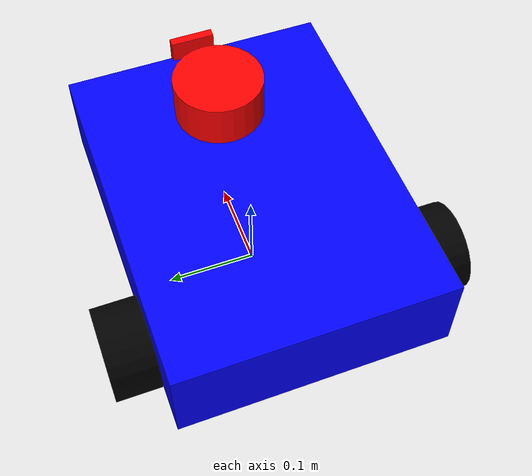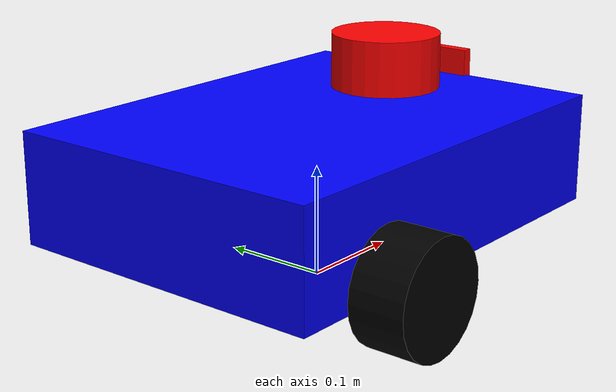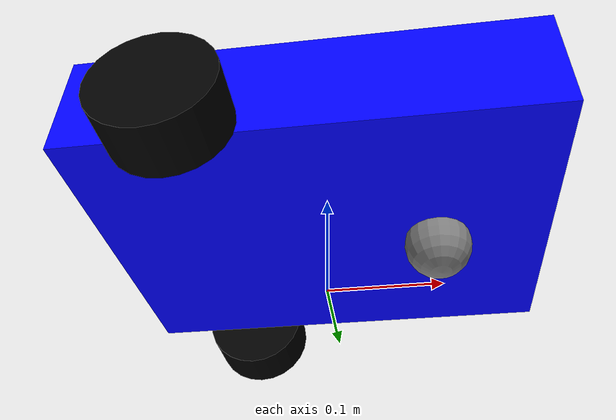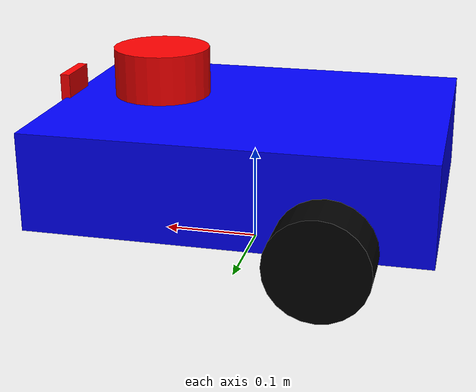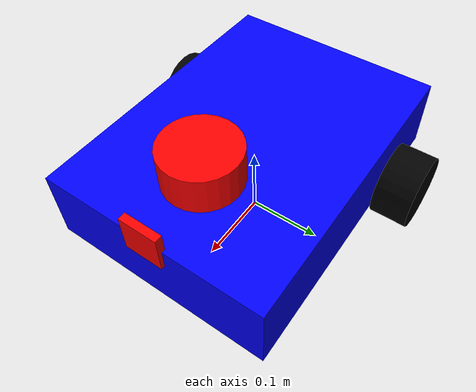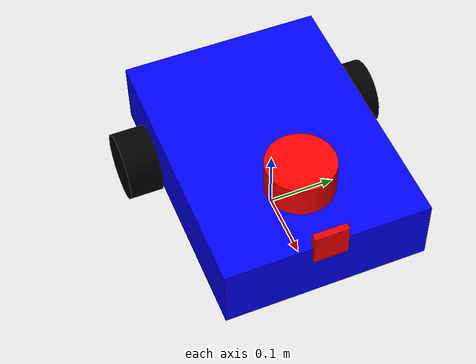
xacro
<?xml version="1.0"?>

<robot xmlns:xacro="http://ros.org/wiki/xacro" name="diff_robot">

  <xacro:include filename="gazebo_world.xacro"/>

  <link name="base_footprint"/>

  <!-- Base Link -->
  <link name="base_link">
    <inertial>
      <mass value="10.0"/> <!--determines the weight therby the stability of bots-->
      <origin xyz="0 0 0.05"/>
      <inertia ixx="0.01" ixy="0.0" ixz="0.0" iyy="0.01" iyz="0.0" izz="0.01"/>
    </inertial>
    <visual>
      <geometry>
        <box size="0.4 0.3 0.1"/>
      </geometry>
      <origin xyz="0 0 0.05"/>
      <material name="blue">
        <color rgba="0 0 1 1"/>
      </material>
    </visual>
    <collision>
      <geometry>
        <box size="0.4 0.3 0.1"/>
      </geometry>
      <origin xyz="0 0 0.05"/>
    </collision>
  </link>

  <gazebo reference="base_link">
  <material>Gazebo/Blue</material>
  </gazebo>

  <joint name="base_joint" type="fixed">
    <parent link="base_footprint"/>
    <child link="base_link"/>
    <origin xyz="0 0 0.05"/>
  </joint>

  <!-- Camera Link -->
  <link name="camera_link">
    <inertial>
      <mass value="0.1"/>
      <origin xyz="0 0 0"/>
      <inertia ixx="0.001" iyy="0.001" izz="0.001" ixy="0" ixz="0" iyz="0"/>
    </inertial>
    <visual>
      <geometry>
        <box size="0.05 0.05 0.01"/>
      </geometry>
      <origin xyz="0 0 0"/>
      <material name="red">
        <color rgba="1 0 0 1"/>
      </material>
    </visual>
    <collision>
      <geometry>
        <box size="0.05 0.05 0.05"/>
      </geometry>
      <origin xyz="0 0 0.05"/>
    </collision>
  </link>

  <!-- Lidar Link -->
  <link name="lidar_link">
    <inertial>
      <mass value="0.2"/>
      <origin xyz="0 0 0"/>
      <inertia ixx="0.001" iyy="0.001" izz="0.001" ixy="0" ixz="0" iyz="0"/>
    </inertial>
    <visual>
      <geometry>
        <cylinder radius="0.05" length="0.05"/>
      </geometry>
      <origin xyz="0 0 0"/>
      <material name="red">
        <color rgba="1 0 0 1"/>
      </material>
    </visual>
    <collision>
      <geometry>
        <box size="0.05 0.05 0.05"/>
      </geometry>
      <origin xyz="0 0 0.05"/>
    </collision>
  </link>

  <!-- Left Wheel -->
  <link name="left_wheel">
    <inertial>
      <mass value="0.2"/>
      <origin xyz="0 0 0"/>
      <inertia ixx="0.001" iyy="0.001" izz="0.001" ixy="0" ixz="0" iyz="0"/>
    </inertial>
    <visual>
      <geometry>
        <cylinder length="0.05" radius="0.05"/>
      </geometry>
      <origin xyz="0 0 0" rpy="0 1.5708 0"/>
      <material name="black">
        <color rgba="0 0 0 1"/>
      </material>
    </visual>
    <collision>
      <geometry>
        <cylinder length="0.05" radius="0.05"/>
      </geometry>
      <origin xyz="0 0 0" rpy="0 1.5708 0"/>
    </collision>
  </link>

  <!-- Right Wheel -->
  <link name="right_wheel">
    <inertial>
      <mass value="0.2"/>
      <origin xyz="0 0 0"/>
      <inertia ixx="0.001" iyy="0.001" izz="0.001" ixy="0" ixz="0" iyz="0"/>
    </inertial>
    <visual>
      <geometry>
        <cylinder length="0.05" radius="0.05"/>
      </geometry>
      <origin xyz="0 0 0" rpy="0 1.5708 0"/>
      <material name="black">
        <color rgba="0 0 0 1"/>
      </material>
    </visual>
    <collision>
      <geometry>
        <cylinder length="0.05" radius="0.05"/>
      </geometry>
      <origin xyz="0 0 0" rpy="0 1.5708 0"/>
    </collision>
  </link>

  <!-- Caster Wheel -->
  <link name="caster_wheel">
    <inertial>
      <mass value="0.05"/>
      <origin xyz="0 0 0"/>
      <inertia ixx="0.0001" iyy="0.0001" izz="0.0001" ixy="0" ixz="0" iyz="0"/>
    </inertial>
    <visual>
      <geometry>
        <sphere radius="0.03"/>
      </geometry>
      <origin xyz="0 -0.1 0.03"/>
      <material name="gray">
        <color rgba="0.5 0.5 0.5 1"/>
      </material>
    </visual>
    <collision>
      <geometry>
        <sphere radius="0.03"/>
      </geometry>
      <origin xyz="0 -0.1 0.03"/>
    </collision>
  </link>

  <!-- Joints -->

  <joint name="left_wheel_joint" type="continuous">
    <parent link="base_link"/>
    <child link="left_wheel"/>
    <origin xyz="-0.1 0.175 0.01" rpy="0 0 1.57"/>
    <axis xyz="1 0 0"/>

    <limit effort="10.0" velocity="20.0"/>
    <dynamics damping="0.1" friction="0.1"/>
  </joint>

  <joint name="right_wheel_joint" type="continuous">
    <parent link="base_link"/>
    <child link="right_wheel"/>
    <origin xyz="-0.1 -0.175 0.01" rpy="0 0 1.57"/>
    <axis xyz="1 0 0"/>

    <limit effort="10.0" velocity="20.0"/>
    <dynamics damping="0.1" friction="0.1"/>
  </joint>

  <joint name="caster_joint" type="fixed">
    <parent link="base_link"/>
    <child link="caster_wheel"/>
    <origin xyz="0.0 0.0 -0.04" rpy="0 0 1.57"/>
  </joint>

  <joint name="camera_joint" type="fixed">
    <parent link="base_link"/>
    <child link="camera_link"/>
    <origin xyz="0.2 0 0.1" rpy="0 1.57 0"/>
  </joint>

  <joint name="lidar_joint" type="fixed">
    <parent link="base_link"/>
    <child link="lidar_link"/>
    <origin xyz="0.1 0 0.13"/>
  </joint>

</robot>
